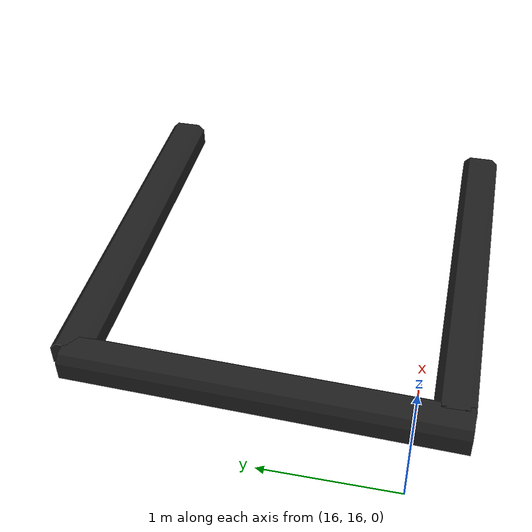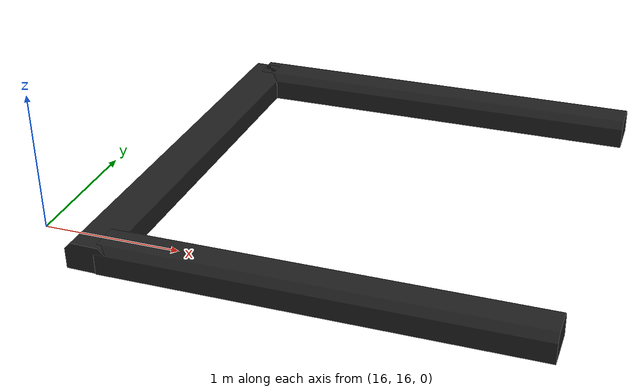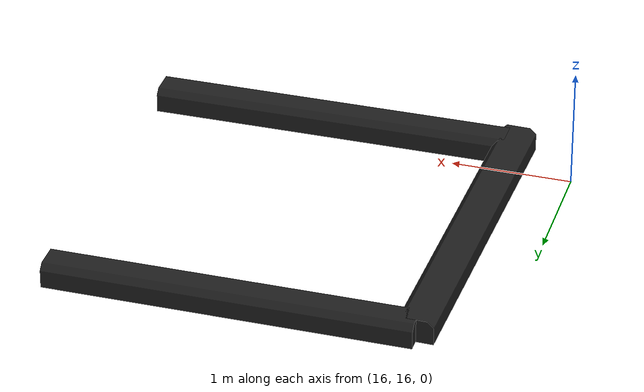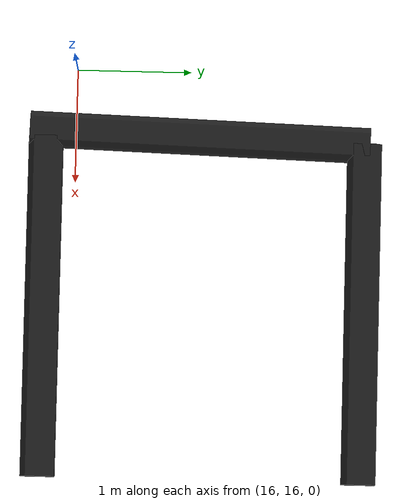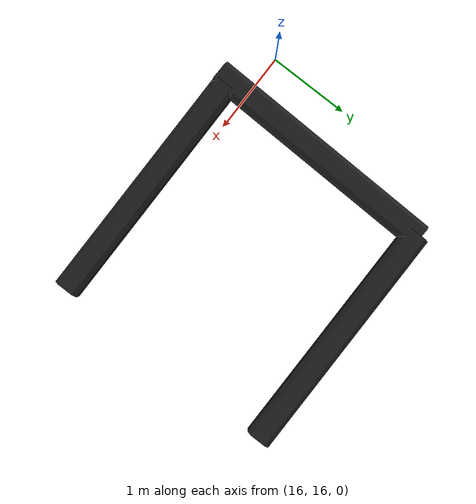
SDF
<sdf version="1.7">
 <world name="default">
  <model name="bar2_43">
   <static>1</static>
   <link name="link_3">
    <inertial>
     <mass>1</mass>
     <inertia>
      <ixx>0.166667</ixx>
      <ixy>0</ixy>
      <ixz>0</ixz>
      <iyy>0.166667</iyy>
      <iyz>0</iyz>
      <izz>0.166667</izz>
     </inertia>
    </inertial>
    <pose>4.47991 -0.091961 0 0 -0 0</pose>
    <visual name="visual">
     <geometry>
      <mesh><uri>/home/leejeonghun/model_editor_models/bar2.dae</uri><scale>1 1 1</scale></mesh>
     </geometry>
     <material>
      <lighting>1</lighting>
      <script><uri>file://media/materials/scripts/gazebo.material</uri><name>Gazebo/Black</name></script>
      <shader type="pixel"/>
     </material>
    </visual>
    <collision name="collision">
     <geometry>
      <mesh><uri>/home/leejeonghun/model_editor_models/bar2.dae</uri><scale>1 1 1</scale></mesh>
     </geometry>
     <surface>
      <friction>
       <ode><mu>1</mu><mu2>1</mu2><fdir1>0 0 0</fdir1><slip1>0</slip1><slip2>0</slip2></ode>
       <torsional>
        <coefficient>1</coefficient>
        <patch_radius>0</patch_radius>
        <surface_radius>0</surface_radius>
        <use_patch_radius>1</use_patch_radius>
        <ode><slip>0</slip></ode>
       </torsional>
      </friction>
      <bounce><restitution_coefficient>0</restitution_coefficient><threshold>1e+06</threshold></bounce>
      <contact>
       <collide_without_contact>0</collide_without_contact>
       <collide_without_contact_bitmask>1</collide_without_contact_bitmask>
       <collide_bitmask>1</collide_bitmask>
       <ode>
        <soft_cfm>0</soft_cfm>
        <soft_erp>0.2</soft_erp>
        <kp>1e+13</kp>
        <kd>1</kd>
        <max_vel>0.01</max_vel>
        <min_depth>0</min_depth>
       </ode>
       <bullet>
        <split_impulse>1</split_impulse>
        <split_impulse_penetration_threshold>-0.01</split_impulse_penetration_threshold>
        <soft_cfm>0</soft_cfm>
        <soft_erp>0.2</soft_erp>
        <kp>1e+13</kp>
        <kd>1</kd>
       </bullet>
      </contact>
     </surface>
    </collision>
   </link>
   <static>0</static>
   <pose>34.1003 12.6489 0 0 -0 0</pose>
  </model>
  <model name="bar2_44">
   <static>1</static>
   <link name="link_3">
    <inertial>
     <mass>1</mass>
     <inertia>
      <ixx>0.166667</ixx>
      <ixy>0</ixy>
      <ixz>0</ixz>
      <iyy>0.166667</iyy>
      <iyz>0</iyz>
      <izz>0.166667</izz>
     </inertia>
    </inertial>
    <pose>4.47991 -0.091961 0 0 -0 0</pose>
    <visual name="visual">
     <geometry>
      <mesh><uri>/home/leejeonghun/model_editor_models/bar2.dae</uri><scale>1 1 1</scale></mesh>
     </geometry>
     <material>
      <lighting>1</lighting>
      <script><uri>file://media/materials/scripts/gazebo.material</uri><name>Gazebo/Black</name></script>
      <shader type="pixel"/>
     </material>
    </visual>
    <collision name="collision">
     <geometry>
      <mesh><uri>/home/leejeonghun/model_editor_models/bar2.dae</uri><scale>1 1 1</scale></mesh>
     </geometry>
     <surface>
      <friction>
       <ode><mu>1</mu><mu2>1</mu2><fdir1>0 0 0</fdir1><slip1>0</slip1><slip2>0</slip2></ode>
       <torsional>
        <coefficient>1</coefficient>
        <patch_radius>0</patch_radius>
        <surface_radius>0</surface_radius>
        <use_patch_radius>1</use_patch_radius>
        <ode><slip>0</slip></ode>
       </torsional>
      </friction>
      <bounce><restitution_coefficient>0</restitution_coefficient><threshold>1e+06</threshold></bounce>
      <contact>
       <collide_without_contact>0</collide_without_contact>
       <collide_without_contact_bitmask>1</collide_without_contact_bitmask>
       <collide_bitmask>1</collide_bitmask>
       <ode>
        <soft_cfm>0</soft_cfm>
        <soft_erp>0.2</soft_erp>
        <kp>1e+13</kp>
        <kd>1</kd>
        <max_vel>0.01</max_vel>
        <min_depth>0</min_depth>
       </ode>
       <bullet>
        <split_impulse>1</split_impulse>
        <split_impulse_penetration_threshold>-0.01</split_impulse_penetration_threshold>
        <soft_cfm>0</soft_cfm>
        <soft_erp>0.2</soft_erp>
        <kp>1e+13</kp>
        <kd>1</kd>
       </bullet>
      </contact>
     </surface>
    </collision>
   </link>
   <static>0</static>
   <pose>34.0892 9.83853 0 0 -0 0</pose>
  </model>
  <model name="bar2_45">
   <static>1</static>
   <link name="link_3">
    <inertial>
     <mass>1</mass>
     <inertia>
      <ixx>0.166667</ixx>
      <ixy>0</ixy>
      <ixz>0</ixz>
      <iyy>0.166667</iyy>
      <iyz>0</iyz>
      <izz>0.166667</izz>
     </inertia>
    </inertial>
    <pose>4.47991 -0.091961 0 0 -0 0</pose>
    <visual name="visual">
     <geometry>
      <mesh><uri>/home/leejeonghun/model_editor_models/bar2.dae</uri><scale>1 1 1</scale></mesh>
     </geometry>
     <material>
      <lighting>1</lighting>
      <script><uri>file://media/materials/scripts/gazebo.material</uri><name>Gazebo/Black</name></script>
      <shader type="pixel"/>
     </material>
    </visual>
    <collision name="collision">
     <geometry>
      <mesh><uri>/home/leejeonghun/model_editor_models/bar2.dae</uri><scale>1 1 1</scale></mesh>
     </geometry>
     <surface>
      <friction>
       <ode><mu>1</mu><mu2>1</mu2><fdir1>0 0 0</fdir1><slip1>0</slip1><slip2>0</slip2></ode>
       <torsional>
        <coefficient>1</coefficient>
        <patch_radius>0</patch_radius>
        <surface_radius>0</surface_radius>
        <use_patch_radius>1</use_patch_radius>
        <ode><slip>0</slip></ode>
       </torsional>
      </friction>
      <bounce><restitution_coefficient>0</restitution_coefficient><threshold>1e+06</threshold></bounce>
      <contact>
       <collide_without_contact>0</collide_without_contact>
       <collide_without_contact_bitmask>1</collide_without_contact_bitmask>
       <collide_bitmask>1</collide_bitmask>
       <ode>
        <soft_cfm>0</soft_cfm>
        <soft_erp>0.2</soft_erp>
        <kp>1e+13</kp>
        <kd>1</kd>
        <max_vel>0.01</max_vel>
        <min_depth>0</min_depth>
       </ode>
       <bullet>
        <split_impulse>1</split_impulse>
        <split_impulse_penetration_threshold>-0.01</split_impulse_penetration_threshold>
        <soft_cfm>0</soft_cfm>
        <soft_erp>0.2</soft_erp>
        <kp>1e+13</kp>
        <kd>1</kd>
       </bullet>
      </contact>
     </surface>
    </collision>
   </link>
   <static>0</static>
   <pose>22.9277 32.9028 0 0 -0 1.54273</pose>
  </model>
 </world>
</sdf>
